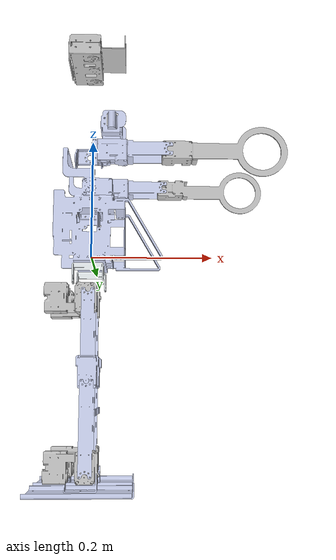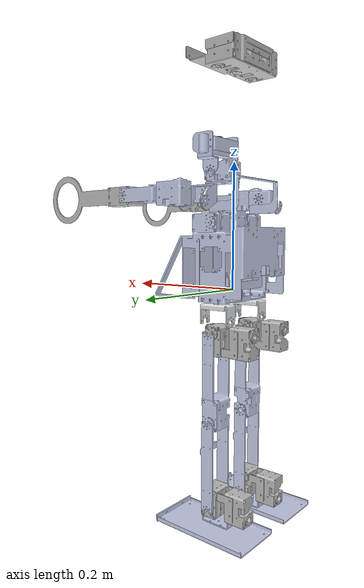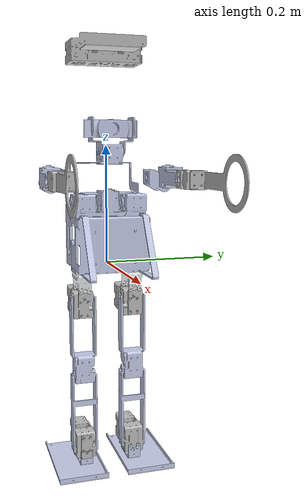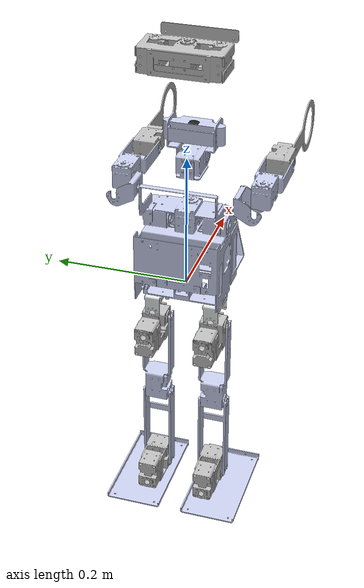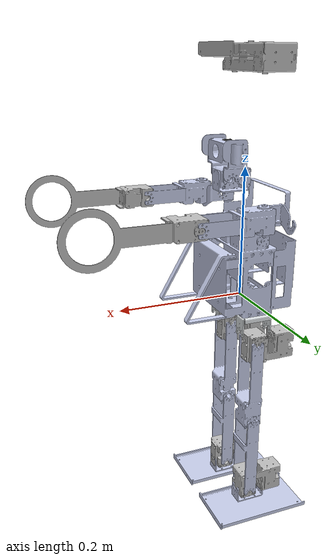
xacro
<?xml version="1.0"?>
<robot
  name="kidsize" xmlns:xacro="http://www.ros.org/wiki/xacro">
	<xacro:property name="pi" value="3.14159265359" />
	<xacro:property name="deg" value="${pi/180}" />
		<material name="black">
			<color rgba="0.1 0.1 0.1 1" />
		</material>
		<material name="white">
			<color rgba="0.8 0.8 0.8 1" />
		</material>
		<material name="clear">
			<color rgba="1.0 1.0 1.0 0.0" />
		</material>
		<material name="orange">
			<color rgba="${255/255} ${108/255} ${10/255} 1.0" />
		</material>
  <link
    name="waist_link">
    <inertial>
      <origin
        xyz="-0.00939428139224641 -4.60441121757915E-08 -0.000641732576416809"
        rpy="0 0 0" />
      <mass
        value="0.210943942888859" />
      <inertia
        ixx="0.000341787200379464"
        ixy="1.68848036086564E-10"
        ixz="1.27321856491004E-06"
        iyy="9.98074093608564E-05"
        iyz="5.24058097864859E-12"
        izz="0.000357999063478674" />
    </inertial>
    <visual>
      <origin
        xyz="0 0 0"
        rpy="0 0 0" />
      <geometry>
        <mesh
          filename="package://urdf/kidsize_model/robocup_robot/meshes/waist_link.STL" />
      </geometry>
      <material
        name="">
        <color
          rgba="0.752941176470588 0.752941176470588 0.752941176470588 1" />
      </material>
    </visual>
    <collision>
      <origin
        xyz="0 0 0"
        rpy="0 0 0" />
      <geometry>
        <mesh
          filename="package://urdf/kidsize_model/robocup_robot/meshes/waist_link.STL" />
      </geometry>
    </collision>
  </link>
  <link
    name="trunk_link">
    <inertial>
      <origin
        xyz="-0.00207929488403977 -0.000148840580601717 0.09882913193458"
        rpy="0 0 0" />
      <mass
        value="0.639632099418805" />
      <inertia
        ixx="0.00207382837512236"
        ixy="7.20391665944275E-07"
        ixz="-0.000145762768834737"
        iyy="0.00159922346192907"
        iyz="2.52085914196649E-06"
        izz="0.00200543365155241" />
    </inertial>
    <visual>
      <origin
        xyz="0 0 0"
        rpy="0 0 0" />
      <geometry>
        <mesh
          filename="package://urdf/kidsize_model/robocup_robot/meshes/trunk_link.STL" />
      </geometry>
      <material
        name="">
        <color
          rgba="0.792156862745098 0.819607843137255 0.933333333333333 1" />
      </material>
    </visual>
    <collision>
      <origin
        xyz="0 0 0"
        rpy="0 0 0" />
      <geometry>
        <mesh
          filename="package://urdf/kidsize_model/robocup_robot/meshes/trunk_link.STL" />
      </geometry>
    </collision>
  </link>
  <joint
    name="waist_yaw_joint"
    type="revolute">
    <origin
      xyz="0 0 0"
      rpy="0 0 0" />
    <parent
      link="waist_link" />
    <child
      link="trunk_link" />
    <axis
      xyz="0 0 1" />
    <limit
      lower="${-pi}"
      upper="${pi}"
      effort="100"
      velocity="5" />
    <dynamics
      friction="0.7"
      damping="0.1" />
  </joint>
  <link
    name="left_shoulder_link">
    <inertial>
      <origin
        xyz="0.00303632774271406 0.0362469594639394 3.31679128606766E-15"
        rpy="0 0 0" />
      <mass
        value="0.0085292893519016" />
      <inertia
        ixx="4.4633278691704E-06"
        ixy="-3.52494995340182E-07"
        ixz="-2.31421700758012E-20"
        iyy="3.60847595287127E-06"
        iyz="1.58823766686137E-21"
        izz="2.76664423653777E-06" />
    </inertial>
    <visual>
      <origin
        xyz="0 0 0"
        rpy="0 0 0" />
      <geometry>
        <mesh
          filename="package://urdf/kidsize_model/robocup_robot/meshes/left_shoulder_link.STL" />
      </geometry>
      <material
        name="">
        <color
          rgba="0.792156862745098 0.819607843137255 0.933333333333333 1" />
      </material>
    </visual>
    <collision>
      <origin
        xyz="0 0 0"
        rpy="0 0 0" />
      <geometry>
        <mesh
          filename="package://urdf/kidsize_model/robocup_robot/meshes/left_shoulder_link.STL" />
      </geometry>
    </collision>
  </link>
  <joint
    name="left_shoulder_pitch_joint"
    type="revolute">
    <origin
      xyz="0 0.053 0.14675"
      rpy="0 0 0" />
    <parent
      link="trunk_link" />
    <child
      link="left_shoulder_link" />
    <axis
      xyz="0 1 0" />
    <limit
      lower="${-pi}"
      upper="${pi}"
      effort="100"
      velocity="5" />
    <dynamics
      friction="0.7"
      damping="0.1" />
  </joint>
  <link
    name="left_upper_arm_link">
    <inertial>
      <origin
        xyz="0.000678411211440105 -1.8987570867858E-07 -0.0191217777296797"
        rpy="0 0 0" />
      <mass
        value="0.0510794115590111" />
      <inertia
        ixx="3.13133402075074E-05"
        ixy="-6.57973359323336E-12"
        ixz="-3.53618283016186E-07"
        iyy="3.06157554760576E-05"
        iyz="2.63047056126239E-10"
        izz="9.80852784205314E-06" />
    </inertial>
    <visual>
      <origin
        xyz="0 0 0"
        rpy="0 0 0" />
      <geometry>
        <mesh
          filename="package://urdf/kidsize_model/robocup_robot/meshes/left_upper_arm_link.STL" />
      </geometry>
      <material
        name="">
        <color
          rgba="0.792156862745098 0.819607843137255 0.933333333333333 1" />
      </material>
    </visual>
    <collision>
      <origin
        xyz="0 0 0"
        rpy="0 0 0" />
      <geometry>
        <mesh
          filename="package://urdf/kidsize_model/robocup_robot/meshes/left_upper_arm_link.STL" />
      </geometry>
    </collision>
  </link>
  <joint
    name="left_upper_arm_roll_joint"
    type="revolute">
    <origin
      xyz="0.02425 0.049 0"
      rpy="0 -1.5708 0" />
    <parent
      link="left_shoulder_link" />
    <child
      link="left_upper_arm_link" />
    <axis
      xyz="-1 0 0" />
    <limit
      lower="${-pi}"
      upper="${pi}"
      effort="100"
      velocity="5" />
    <dynamics
      friction="0.7"
      damping="0.1" />
  </joint>
  <link
    name="left_elbow_link">
    <inertial>
      <origin
        xyz="1.85168757452225E-07 0.00233363841472187 -0.0273900365208956"
        rpy="0 0 0" />
      <mass
        value="0.0523778400197291" />
      <inertia
        ixx="9.27211209059553E-05"
        ixy="2.26333509945507E-11"
        ixz="-3.43238744020251E-10"
        iyy="9.36327197767988E-05"
        iyz="6.86105678251835E-06"
        izz="1.08163961495754E-05" />
    </inertial>
    <visual>
      <origin
        xyz="0 0 0"
        rpy="0 0 0" />
      <geometry>
        <mesh
          filename="package://urdf/kidsize_model/robocup_robot/meshes/left_elbow_link.STL" />
      </geometry>
      <material
        name="">
        <color
          rgba="0.752941176470588 0.752941176470588 0.752941176470588 1" />
      </material>
    </visual>
    <collision>
      <origin
        xyz="0 0 0"
        rpy="0 0 0" />
      <geometry>
        <mesh
          filename="package://urdf/kidsize_model/robocup_robot/meshes/left_elbow_link.STL" />
      </geometry>
    </collision>
  </link>
  <joint
    name="left_elbow_pitch_joint"
    type="revolute">
    <origin
      xyz="0 0 -0.10025"
      rpy="0 0 0" />
    <parent
      link="left_upper_arm_link" />
    <child
      link="left_elbow_link" />
    <axis
      xyz="0 1 0" />
    <limit
      lower="${-pi}"
      upper="${pi}"
      effort="100"
      velocity="5" />
    <dynamics
      friction="0.7"
      damping="0.1" />
  </joint>
  <link
    name="right_shoulder_link">
    <inertial>
      <origin
        xyz="0.00303632774271398 -0.0362469594639394 9.57567358739198E-16"
        rpy="0 0 0" />
      <mass
        value="0.0085292893519016" />
      <inertia
        ixx="4.4633278691704E-06"
        ixy="3.5249499534018E-07"
        ixz="-2.26133899466046E-23"
        iyy="3.60847595287127E-06"
        iyz="3.01602055369598E-21"
        izz="2.76664423653777E-06" />
    </inertial>
    <visual>
      <origin
        xyz="0 0 0"
        rpy="0 0 0" />
      <geometry>
        <mesh
          filename="package://urdf/kidsize_model/robocup_robot/meshes/right_shoulder_link.STL" />
      </geometry>
      <material
        name="">
        <color
          rgba="0.792156862745098 0.819607843137255 0.933333333333333 1" />
      </material>
    </visual>
    <collision>
      <origin
        xyz="0 0 0"
        rpy="0 0 0" />
      <geometry>
        <mesh
          filename="package://urdf/kidsize_model/robocup_robot/meshes/right_shoulder_link.STL" />
      </geometry>
    </collision>
  </link>
  <joint
    name="right_shoulder_pitch_joint"
    type="revolute">
    <origin
      xyz="0 -0.053 0.14675"
      rpy="0 0 0" />
    <parent
      link="trunk_link" />
    <child
      link="right_shoulder_link" />
    <axis
      xyz="0 -1 0" />
    <limit
      lower="${-pi}"
      upper="${pi}"
      effort="100"
      velocity="5" />
    <dynamics
      friction="0.7"
      damping="0.1" />
  </joint>
  <link
    name="right_upper_arm_link">
    <inertial>
      <origin
        xyz="0.000683044937076036 1.08215084787533E-05 -0.0193161303708199"
        rpy="0 0 0" />
      <mass
        value="0.0511158524108051" />
      <inertia
        ixx="3.18475528264542E-05"
        ixy="4.54446779241538E-10"
        ixz="-4.48940731057538E-07"
        iyy="3.11274405794203E-05"
        iyz="3.94345652689599E-08"
        izz="9.81721455090846E-06" />
    </inertial>
    <visual>
      <origin
        xyz="0 0 0"
        rpy="0 0 0" />
      <geometry>
        <mesh
          filename="package://urdf/kidsize_model/robocup_robot/meshes/right_upper_arm_link.STL" />
      </geometry>
      <material
        name="">
        <color
          rgba="0.792156862745098 0.819607843137255 0.933333333333333 1" />
      </material>
    </visual>
    <collision>
      <origin
        xyz="0 0 0"
        rpy="0 0 0" />
      <geometry>
        <mesh
          filename="package://urdf/kidsize_model/robocup_robot/meshes/right_upper_arm_link.STL" />
      </geometry>
    </collision>
  </link>
  <joint
    name="right_upper_arm_roll_joint"
    type="revolute">
    <origin
      xyz="0.02425 -0.049 0"
      rpy="0 -1.5708 0" />
    <parent
      link="right_shoulder_link" />
    <child
      link="right_upper_arm_link" />
    <axis
      xyz="-1 0 0" />
    <limit
      lower="${-pi}"
      upper="${pi}"
      effort="100"
      velocity="5" />
    <dynamics
      friction="0.7"
      damping="0.1" />
  </joint>
  <link
    name="right_elbow_link">
    <inertial>
      <origin
        xyz="-1.85168755703624E-07 -0.00233363841472201 -0.0273900365208949"
        rpy="0 0 0" />
      <mass
        value="0.0523778400197292" />
      <inertia
        ixx="9.27211209059558E-05"
        ixy="2.26333509918962E-11"
        ixz="3.43238744038861E-10"
        iyy="9.36327197767993E-05"
        iyz="-6.86105678251887E-06"
        izz="1.08163961495755E-05" />
    </inertial>
    <visual>
      <origin
        xyz="0 0 0"
        rpy="0 0 0" />
      <geometry>
        <mesh
          filename="package://urdf/kidsize_model/robocup_robot/meshes/right_elbow_link.STL" />
      </geometry>
      <material
        name="">
        <color
          rgba="0.752941176470588 0.752941176470588 0.752941176470588 1" />
      </material>
    </visual>
    <collision>
      <origin
        xyz="0 0 0"
        rpy="0 0 0" />
      <geometry>
        <mesh
          filename="package://urdf/kidsize_model/robocup_robot/meshes/right_elbow_link.STL" />
      </geometry>
    </collision>
  </link>
  <joint
    name="right_elbow_pitch_joint"
    type="revolute">
    <origin
      xyz="0 0 -0.10025"
      rpy="0 0 0" />
    <parent
      link="right_upper_arm_link" />
    <child
      link="right_elbow_link" />
    <axis
      xyz="0 -1 0" />
    <limit
      lower="${-pi}"
      upper="${pi}"
      effort="100"
      velocity="5" />
    <dynamics
      friction="0.7"
      damping="0.1" />
  </joint>
  <link
    name="neck_link">
    <inertial>
      <origin
        xyz="-0.00156041292470768 -0.000723759920217962 0.036704191427895"
        rpy="0 0 0" />
      <mass
        value="0.0478789229788551" />
      <inertia
        ixx="8.27547872890047E-06"
        ixy="1.0025868821589E-07"
        ixz="-1.89903966481202E-08"
        iyy="1.34187871471235E-05"
        iyz="4.49034542147331E-08"
        izz="1.40614214294888E-05" />
    </inertial>
    <visual>
      <origin
        xyz="0 0 0"
        rpy="0 0 0" />
      <geometry>
        <mesh
          filename="package://urdf/kidsize_model/robocup_robot/meshes/neck_link.STL" />
      </geometry>
      <material
        name="">
        <color
          rgba="0.792156862745098 0.819607843137255 0.933333333333333 1" />
      </material>
    </visual>
    <collision>
      <origin
        xyz="0 0 0"
        rpy="0 0 0" />
      <geometry>
        <mesh
          filename="package://urdf/kidsize_model/robocup_robot/meshes/neck_link.STL" />
      </geometry>
    </collision>
  </link>
  <joint
    name="neck_yaw_joint"
    type="revolute">
    <origin
      xyz="0.021 0 0.1495"
      rpy="0 0 0" />
    <parent
      link="trunk_link" />
    <child
      link="neck_link" />
    <axis
      xyz="0 0 1" />
    <limit
      lower="${-pi}"
      upper="${pi}"
      effort="100"
      velocity="5" />
    <dynamics
      friction="0.7"
      damping="0.1" />
  </joint>
  <link
    name="head_link">
    <inertial>
      <origin
        xyz="-0.00241864435015901 -0.000578325032218677 0.0433318848852272"
        rpy="0 0 0" />
      <mass
        value="0.0703068040668923" />
      <inertia
        ixx="5.41933168038282E-05"
        ixy="1.71317904618416E-07"
        ixz="-1.92864248034763E-07"
        iyy="1.71003833917026E-05"
        iyz="2.75406205939894E-07"
        izz="4.97586290771393E-05" />
    </inertial>
    <visual>
      <origin
        xyz="0 0 0"
        rpy="0 0 0" />
      <geometry>
        <mesh
          filename="package://urdf/kidsize_model/robocup_robot/meshes/head_link.STL" />
      </geometry>
      <material
        name="">
        <color
          rgba="0.792156862745098 0.819607843137255 0.933333333333333 1" />
      </material>
    </visual>
    <collision>
      <origin
        xyz="0 0 0"
        rpy="0 0 0" />
      <geometry>
        <mesh
          filename="package://urdf/kidsize_model/robocup_robot/meshes/head_link.STL" />
      </geometry>
    </collision>
  </link>
  <joint
    name="head_pitch_joint"
    type="revolute">
    <origin
      xyz="0.01025 0 0.038"
      rpy="0 0 0" />
    <parent
      link="neck_link" />
    <child
      link="head_link" />
    <axis
      xyz="0 -1 0" />
    <limit
      lower="${-pi}"
      upper="${pi}"
      effort="100"
      velocity="5" />
    <dynamics
      friction="0.7"
      damping="0.1" />
  </joint>
  <link
    name="left_hip_yaw_link">
    <inertial>
      <origin
        xyz="-0.000221415113195594 2.87040434199248E-08 -0.0368621298482312"
        rpy="0 0 0" />
      <mass
        value="0.0234087344413401" />
      <inertia
        ixx="5.73715633041054E-06"
        ixy="-1.67789260387735E-11"
        ixz="2.45933010037554E-08"
        iyy="1.23691993953298E-05"
        iyz="2.78039242789838E-12"
        izz="1.27625110986169E-05" />
    </inertial>
    <visual>
      <origin
        xyz="0 0 0"
        rpy="0 0 0" />
      <geometry>
        <mesh
          filename="package://urdf/kidsize_model/robocup_robot/meshes/left_hip_yaw_link.STL" />
      </geometry>
      <material
        name="">
        <color
          rgba="0.898039215686275 0.917647058823529 0.929411764705882 1" />
      </material>
    </visual>
    <collision>
      <origin
        xyz="0 0 0"
        rpy="0 0 0" />
      <geometry>
        <mesh
          filename="package://urdf/kidsize_model/robocup_robot/meshes/left_hip_yaw_link.STL" />
      </geometry>
    </collision>
  </link>
  <joint
    name="left_hip_yaw_joint"
    type="revolute">
    <origin
      xyz="0 0.0445 0"
      rpy="0 0 0" />
    <parent
      link="waist_link" />
    <child
      link="left_hip_yaw_link" />
    <axis
      xyz="0 0 -1" />
    <limit
      lower="${-pi}"
      upper="${pi}"
      effort="100"
      velocity="5" />
    <dynamics
      friction="0.7"
      damping="0.1" />
  </joint>
  <link
    name="left_hip_roll_link">
    <inertial>
      <origin
        xyz="0.0264560202844392 2.81419267119248E-05 -0.0154218154218739"
        rpy="0 0 0" />
      <mass
        value="0.185577684373585" />
      <inertia
        ixx="7.62644456712743E-05"
        ixy="-3.53079974453397E-07"
        ixz="7.00492601513815E-07"
        iyy="0.000197383117610255"
        iyz="-1.0680995440682E-07"
        izz="0.000170036099220205" />
    </inertial>
    <visual>
      <origin
        xyz="0 0 0"
        rpy="0 0 0" />
      <geometry>
        <mesh
          filename="package://urdf/kidsize_model/robocup_robot/meshes/left_hip_roll_link.STL" />
      </geometry>
      <material
        name="">
        <color
          rgba="0.752941176470588 0.752941176470588 0.752941176470588 1" />
      </material>
    </visual>
    <collision>
      <origin
        xyz="0 0 0"
        rpy="0 0 0" />
      <geometry>
        <mesh
          filename="package://urdf/kidsize_model/robocup_robot/meshes/left_hip_roll_link.STL" />
      </geometry>
    </collision>
  </link>
  <joint
    name="left_hip_roll_joint"
    type="revolute">
    <origin
      xyz="-0.05075 0 -0.06188"
      rpy="0 0 0" />
    <parent
      link="left_hip_yaw_link" />
    <child
      link="left_hip_roll_link" />
    <axis
      xyz="1 0 0" />
    <limit
      lower="${-pi}"
      upper="${pi}"
      effort="100"
      velocity="5" />
    <dynamics
      friction="0.7"
      damping="0.1" />
  </joint>
  <link
    name="left_thigh_link">
    <inertial>
      <origin
        xyz="-3.42495945978571E-05 7.44140456582637E-05 -0.11135617060622"
        rpy="0 0 0" />
      <mass
        value="0.130028257484268" />
      <inertia
        ixx="0.000172229742728479"
        ixy="-4.64832232230545E-08"
        ixz="-4.83056099668598E-08"
        iyy="0.00015589230608976"
        iyz="2.25328823392377E-07"
        izz="4.77117079869364E-05" />
    </inertial>
    <visual>
      <origin
        xyz="0 0 0"
        rpy="0 0 0" />
      <geometry>
        <mesh
          filename="package://urdf/kidsize_model/robocup_robot/meshes/left_thigh_link.STL" />
      </geometry>
      <material
        name="">
        <color
          rgba="0.792156862745098 0.819607843137255 0.933333333333333 1" />
      </material>
    </visual>
    <collision>
      <origin
        xyz="0 0 0"
        rpy="0 0 0" />
      <geometry>
        <mesh
          filename="package://urdf/kidsize_model/robocup_robot/meshes/left_thigh_link.STL" />
      </geometry>
    </collision>
  </link>
  <joint
    name="left_hip_pitch_joint"
    type="revolute">
    <origin
      xyz="0.05077 0 -0.00012"
      rpy="0 0 0" />
    <parent
      link="left_hip_roll_link" />
    <child
      link="left_thigh_link" />
    <axis
      xyz="0 1 0" />
    <limit
      lower="${-pi}"
      upper="${pi}"
      effort="100"
      velocity="5" />
    <dynamics
      friction="0.7"
      damping="0.1" />
  </joint>
  <link
    name="left_shank_link">
    <inertial>
      <origin
        xyz="0.00211942700396936 5.55111512312578E-17 -0.0648672619911793"
        rpy="0 0 0" />
      <mass
        value="0.0297851126602444" />
      <inertia
        ixx="6.16541128313655E-05"
        ixy="2.80070279311884E-20"
        ixz="-1.60136858658058E-06"
        iyy="4.64036585684406E-05"
        iyz="-4.07461690752412E-22"
        izz="2.02829249667487E-05" />
    </inertial>
    <visual>
      <origin
        xyz="0 0 0"
        rpy="0 0 0" />
      <geometry>
        <mesh
          filename="package://urdf/kidsize_model/robocup_robot/meshes/left_shank_link.STL" />
      </geometry>
      <material
        name="">
        <color
          rgba="0.792156862745098 0.819607843137255 0.933333333333333 1" />
      </material>
    </visual>
    <collision>
      <origin
        xyz="0 0 0"
        rpy="0 0 0" />
      <geometry>
        <mesh
          filename="package://urdf/kidsize_model/robocup_robot/meshes/left_shank_link.STL" />
      </geometry>
    </collision>
  </link>
  <joint
    name="left_knee_pitch_joint"
    type="revolute">
    <origin
      xyz="0 0 -0.14"
      rpy="0 0 0" />
    <parent
      link="left_thigh_link" />
    <child
      link="left_shank_link" />
    <axis
      xyz="0 1 0" />
    <limit
      lower="${-pi}"
      upper="${pi}"
      effort="100"
      velocity="5" />
    <dynamics
      friction="0.7"
      damping="0.1" />
  </joint>
  <link
    name="left_ankle_link">
    <inertial>
      <origin
        xyz="-0.0243619748730696 7.61370842207038E-05 0.0153018154218736"
        rpy="0 0 0" />
      <mass
        value="0.185577684373585" />
      <inertia
        ixx="7.62635168758286E-05"
        ixy="-1.18118833820851E-07"
        ixz="-6.78268768336747E-07"
        iyy="0.000196949569147409"
        iyz="8.56549408551342E-08"
        izz="0.000169601621961913" />
    </inertial>
    <visual>
      <origin
        xyz="0 0 0"
        rpy="0 0 0" />
      <geometry>
        <mesh
          filename="package://urdf/kidsize_model/robocup_robot/meshes/left_ankle_link.STL" />
      </geometry>
      <material
        name="">
        <color
          rgba="0.752941176470588 0.752941176470588 0.752941176470588 1" />
      </material>
    </visual>
    <collision>
      <origin
        xyz="0 0 0"
        rpy="0 0 0" />
      <geometry>
        <mesh
          filename="package://urdf/kidsize_model/robocup_robot/meshes/left_ankle_link.STL" />
      </geometry>
    </collision>
  </link>
  <joint
    name="left_ankle_pitch_joint"
    type="revolute">
    <origin
      xyz="0 0 -0.14"
      rpy="0 0 0" />
    <parent
      link="left_shank_link" />
    <child
      link="left_ankle_link" />
    <axis
      xyz="0 1 0" />
    <limit
      lower="${-pi}"
      upper="${pi}"
      effort="100"
      velocity="5" />
    <dynamics
      friction="0.7"
      damping="0.1" />
  </joint>
  <link
    name="left_foot_link">
    <inertial>
      <origin
        xyz="0.0540374180370118 0.00742076380487194 -0.0325457026283867"
        rpy="0 0 0" />
      <mass
        value="0.0465401343494676" />
      <inertia
        ixx="4.13338457284459E-05"
        ixy="-1.51051005199587E-07"
        ixz="-6.21176879901946E-07"
        iyy="0.000113524055426782"
        iyz="4.7953588542836E-07"
        izz="0.000151411754822504" />
    </inertial>
    <visual>
      <origin
        xyz="0 0 0"
        rpy="0 0 0" />
      <geometry>
        <mesh
          filename="package://urdf/kidsize_model/robocup_robot/meshes/left_foot_link.STL" />
      </geometry>
      <material
        name="">
        <color
          rgba="0.792156862745098 0.819607843137255 0.933333333333333 1" />
      </material>
    </visual>
    <collision>
      <origin
        xyz="0 0 0"
        rpy="0 0 0" />
      <geometry>
        <mesh
          filename="package://urdf/kidsize_model/robocup_robot/meshes/left_foot_link.STL" />
      </geometry>
    </collision>
  </link>
  <joint
    name="left_ankle_roll_joint"
    type="revolute">
    <origin
      xyz="-0.05077 0 -0.00012"
      rpy="0 0 0" />
    <parent
      link="left_ankle_link" />
    <child
      link="left_foot_link" />
    <axis
      xyz="1 0 0" />
    <limit
      lower="${-pi}"
      upper="${pi}"
      effort="100"
      velocity="5" />
    <dynamics
      friction="0.7"
      damping="0.1" />
  </joint>
  <link
    name="right_hip_yaw_link">
    <inertial>
      <origin
        xyz="-0.00022141511319651 2.87040437529917E-08 -0.0368621298482309"
        rpy="0 0 0" />
      <mass
        value="0.0234087344413401" />
      <inertia
        ixx="5.73715633041056E-06"
        ixy="-1.67789260333574E-11"
        ixz="2.45933010038126E-08"
        iyy="1.23691993953298E-05"
        iyz="2.78039242796716E-12"
        izz="1.27625110986169E-05" />
    </inertial>
    <visual>
      <origin
        xyz="0 0 0"
        rpy="0 0 0" />
      <geometry>
        <mesh
          filename="package://urdf/kidsize_model/robocup_robot/meshes/right_hip_yaw_link.STL" />
      </geometry>
      <material
        name="">
        <color
          rgba="0.898039215686275 0.917647058823529 0.929411764705882 1" />
      </material>
    </visual>
    <collision>
      <origin
        xyz="0 0 0"
        rpy="0 0 0" />
      <geometry>
        <mesh
          filename="package://urdf/kidsize_model/robocup_robot/meshes/right_hip_yaw_link.STL" />
      </geometry>
    </collision>
  </link>
  <joint
    name="right_hip_yaw_joint"
    type="revolute">
    <origin
      xyz="0 -0.0445 0"
      rpy="0 0 0" />
    <parent
      link="waist_link" />
    <child
      link="right_hip_yaw_link" />
    <axis
      xyz="0 0 -1" />
    <limit
      lower="${-pi}"
      upper="${pi}"
      effort="100"
      velocity="5" />
    <dynamics
      friction="0.7"
      damping="0.1" />
  </joint>
  <link
    name="right_hip_roll_link">
    <inertial>
      <origin
        xyz="0.0264080251268298 -7.61370843215536E-05 -0.0154218154218739"
        rpy="0 0 0" />
      <mass
        value="0.185577684373585" />
      <inertia
        ixx="7.62635168758286E-05"
        ixy="1.18118833820891E-07"
        ixz="6.78268768336934E-07"
        iyy="0.00019694956914741"
        iyz="8.56549408551455E-08"
        izz="0.000169601621961913" />
    </inertial>
    <visual>
      <origin
        xyz="0 0 0"
        rpy="0 0 0" />
      <geometry>
        <mesh
          filename="package://urdf/kidsize_model/robocup_robot/meshes/right_hip_roll_link.STL" />
      </geometry>
      <material
        name="">
        <color
          rgba="0.752941176470588 0.752941176470588 0.752941176470588 1" />
      </material>
    </visual>
    <collision>
      <origin
        xyz="0 0 0"
        rpy="0 0 0" />
      <geometry>
        <mesh
          filename="package://urdf/kidsize_model/robocup_robot/meshes/right_hip_roll_link.STL" />
      </geometry>
    </collision>
  </link>
  <joint
    name="right_hip_roll_joint"
    type="revolute">
    <origin
      xyz="-0.05075 0 -0.06188"
      rpy="0 0 0" />
    <parent
      link="right_hip_yaw_link" />
    <child
      link="right_hip_roll_link" />
    <axis
      xyz="1 0 0" />
    <limit
      lower="${-pi}"
      upper="${pi}"
      effort="100"
      velocity="5" />
    <dynamics
      friction="0.7"
      damping="0.1" />
  </joint>
  <link
    name="right_thigh_link">
    <inertial>
      <origin
        xyz="3.42495945982457E-05 -7.44140456583609E-05 -0.111356170606221"
        rpy="0 0 0" />
      <mass
        value="0.130028257484268" />
      <inertia
        ixx="0.000172229742728479"
        ixy="-4.64832232230481E-08"
        ixz="4.83056099672987E-08"
        iyy="0.00015589230608976"
        iyz="-2.25328823392431E-07"
        izz="4.77117079869365E-05" />
    </inertial>
    <visual>
      <origin
        xyz="0 0 0"
        rpy="0 0 0" />
      <geometry>
        <mesh
          filename="package://urdf/kidsize_model/robocup_robot/meshes/right_thigh_link.STL" />
      </geometry>
      <material
        name="">
        <color
          rgba="0.792156862745098 0.819607843137255 0.933333333333333 1" />
      </material>
    </visual>
    <collision>
      <origin
        xyz="0 0 0"
        rpy="0 0 0" />
      <geometry>
        <mesh
          filename="package://urdf/kidsize_model/robocup_robot/meshes/right_thigh_link.STL" />
      </geometry>
    </collision>
  </link>
  <joint
    name="right_hip_pitch_joint"
    type="revolute">
    <origin
      xyz="0.05077 0 -0.00012"
      rpy="0 0 0" />
    <parent
      link="right_hip_roll_link" />
    <child
      link="right_thigh_link" />
    <axis
      xyz="0 -1 0" />
    <limit
      lower="${-pi}"
      upper="${pi}"
      effort="100"
      velocity="5" />
    <dynamics
      friction="0.7"
      damping="0.1" />
  </joint>
  <link
    name="right_shank_link">
    <inertial>
      <origin
        xyz="0.00211942700396961 0 -0.0648672619911792"
        rpy="0 0 0" />
      <mass
        value="0.0297851126602444" />
      <inertia
        ixx="6.16541128313656E-05"
        ixy="-1.72022202107548E-19"
        ixz="-1.60136858658041E-06"
        iyy="4.64036585684406E-05"
        iyz="-7.51769465648825E-20"
        izz="2.02829249667487E-05" />
    </inertial>
    <visual>
      <origin
        xyz="0 0 0"
        rpy="0 0 0" />
      <geometry>
        <mesh
          filename="package://urdf/kidsize_model/robocup_robot/meshes/right_shank_link.STL" />
      </geometry>
      <material
        name="">
        <color
          rgba="0.792156862745098 0.819607843137255 0.933333333333333 1" />
      </material>
    </visual>
    <collision>
      <origin
        xyz="0 0 0"
        rpy="0 0 0" />
      <geometry>
        <mesh
          filename="package://urdf/kidsize_model/robocup_robot/meshes/right_shank_link.STL" />
      </geometry>
    </collision>
  </link>
  <joint
    name="right_knee_pitch_joint"
    type="revolute">
    <origin
      xyz="0 0 -0.14"
      rpy="0 0 0" />
    <parent
      link="right_thigh_link" />
    <child
      link="right_shank_link" />
    <axis
      xyz="0 -1 0" />
    <limit
      lower="${-pi}"
      upper="${pi}"
      effort="100"
      velocity="5" />
    <dynamics
      friction="0.7"
      damping="0.1" />
  </joint>
  <link
    name="right_ankle_link">
    <inertial>
      <origin
        xyz="-0.02431397971546 -2.81419266111582E-05 0.0153018154218738"
        rpy="0 0 0" />
      <mass
        value="0.185577684373585" />
      <inertia
        ixx="7.62644456712743E-05"
        ixy="3.53079974453512E-07"
        ixz="-7.00492601513789E-07"
        iyy="0.000197383117610254"
        iyz="-1.06809954406831E-07"
        izz="0.000170036099220203" />
    </inertial>
    <visual>
      <origin
        xyz="0 0 0"
        rpy="0 0 0" />
      <geometry>
        <mesh
          filename="package://urdf/kidsize_model/robocup_robot/meshes/right_ankle_link.STL" />
      </geometry>
      <material
        name="">
        <color
          rgba="0.752941176470588 0.752941176470588 0.752941176470588 1" />
      </material>
    </visual>
    <collision>
      <origin
        xyz="0 0 0"
        rpy="0 0 0" />
      <geometry>
        <mesh
          filename="package://urdf/kidsize_model/robocup_robot/meshes/right_ankle_link.STL" />
      </geometry>
    </collision>
  </link>
  <joint
    name="right_ankle_pitch_joint"
    type="revolute">
    <origin
      xyz="0 0 -0.14"
      rpy="0 0 0" />
    <parent
      link="right_shank_link" />
    <child
      link="right_ankle_link" />
    <axis
      xyz="0 -1 0" />
    <limit
      lower="${-pi}"
      upper="${pi}"
      effort="100"
      velocity="5" />
    <dynamics
      friction="0.7"
      damping="0.1" />
  </joint>
  <link
    name="right_foot_link">
    <inertial>
      <origin
        xyz="0.054037418037219 -0.00742106828958713 -0.0325457026283424"
        rpy="0 0 0" />
      <mass
        value="0.0465401343494674" />
      <inertia
        ixx="4.13336941039743E-05"
        ixy="1.51414343960291E-07"
        ixz="-6.21176879970176E-07"
        iyy="0.000113524055426785"
        iyz="-4.79319927951698E-07"
        izz="0.000151411603198034" />
    </inertial>
    <visual>
      <origin
        xyz="0 0 0"
        rpy="0 0 0" />
      <geometry>
        <mesh
          filename="package://urdf/kidsize_model/robocup_robot/meshes/right_foot_link.STL" />
      </geometry>
      <material
        name="">
        <color
          rgba="0.792156862745098 0.819607843137255 0.933333333333333 1" />
      </material>
    </visual>
    <collision>
      <origin
        xyz="0 0 0"
        rpy="0 0 0" />
      <geometry>
        <mesh
          filename="package://urdf/kidsize_model/robocup_robot/meshes/right_foot_link.STL" />
      </geometry>
    </collision>
  </link>
  <joint
    name="right_ankle_roll_joint"
    type="revolute">
    <origin
      xyz="-0.05077 0 -0.00012"
      rpy="0 0 0" />
    <parent
      link="right_ankle_link" />
    <child
      link="right_foot_link" />
    <axis
      xyz="1 0 0" />
    <limit
      lower="${-pi}"
      upper="${pi}"
      effort="100"
      velocity="5" />
    <dynamics
      friction="0.7"
      damping="0.1" />
  </joint>
  <joint name="camera_joint" type="fixed">
    <axis xyz="0 1 0" />
    <origin xyz="0.0 0.0 0.04" rpy="0 0 0"/>
    <parent link="head_link"/>
    <child link="camera_link"/>
  </joint>

  <!-- Camera -->
  <link name="camera_link">
    <collision>
      <origin xyz="-0.0 0 0" rpy="0 1.5708 0"/>
      <geometry>
    <cylinder radius="0.0145" length="0.01"/>
      </geometry>
    </collision>

    <visual>
      <origin xyz="-0.0 0 0" rpy="0 1.5708 0"/>
      <geometry>
    <cylinder radius="0.0145" length="0.01"/>
      </geometry>
    </visual>

    <inertial>
      <mass value="1e-5" />
      <origin xyz="0 0 0" rpy="0 0 0"/>
      <inertia ixx="1e-6" ixy="0" ixz="0" iyy="1e-6" iyz="0" izz="1e-6" />
    </inertial>
  </link>

		<transmission name="right_hip_yaw_transmission">
			<type>transmission_interface/SimpleTransmission</type>
			<joint name="right_hip_yaw_joint" >
                <hardwareInterface>hardware_interface/EffortJointInterface</hardwareInterface>

   </joint>
			<actuator name="right_hip_yaw_joint">
				<mechanicalReduction>1</mechanicalReduction>
			</actuator>
		</transmission>
		<transmission name="right_hip_roll_transmission">
			<type>transmission_interface/SimpleTransmission</type>
            <joint name="right_hip_roll_joint" >
				<hardwareInterface>hardware_interface/EffortJointInterface</hardwareInterface>

   </joint>
			<actuator name="right_hip_roll_joint">
				<mechanicalReduction>1</mechanicalReduction>
			</actuator>
		</transmission>
		<transmission name="right_hip_pitch_transmission">
			<type>transmission_interface/SimpleTransmission</type>
            <joint name="right_hip_pitch_joint" >
				<hardwareInterface>hardware_interface/EffortJointInterface</hardwareInterface>

   </joint>
			<actuator name="right_hip_pitch_joint">
				<mechanicalReduction>1</mechanicalReduction>
			</actuator>
		</transmission>
		<transmission name="right_knee_pitch_transmission">
			<type>transmission_interface/SimpleTransmission</type>
            <joint name="right_knee_pitch_joint" >
				<hardwareInterface>hardware_interface/EffortJointInterface</hardwareInterface>

   </joint>
			<actuator name="right_knee_pitch_joint">
				<mechanicalReduction>1</mechanicalReduction>
			</actuator>
		</transmission>
		<transmission name="right_ankle_pitch_transmission">
			<type>transmission_interface/SimpleTransmission</type>
            <joint name="right_ankle_pitch_joint" >
				<hardwareInterface>hardware_interface/EffortJointInterface</hardwareInterface>

   </joint>
			<actuator name="right_ankle_pitch_joint">
				<mechanicalReduction>1</mechanicalReduction>
			</actuator>
		</transmission>
		<transmission name="right_ankle_roll_transmission">
			<type>transmission_interface/SimpleTransmission</type>
            <joint name="right_ankle_roll_joint" >
                <hardwareInterface>hardware_interface/EffortJointInterface</hardwareInterface>

   </joint>
			<actuator name="right_ankle_roll_joint">
				<mechanicalReduction>1</mechanicalReduction>
			</actuator>
		</transmission>
		<transmission name="left_hip_yaw_transmission">
			<type>transmission_interface/SimpleTransmission</type>
            <joint name="left_hip_yaw_joint" >
				<hardwareInterface>hardware_interface/EffortJointInterface</hardwareInterface>

   </joint>
			<actuator name="left_hip_yaw_joint">
				<mechanicalReduction>1</mechanicalReduction>
			</actuator>
		</transmission>
		<transmission name="left_hip_roll_transmission">
			<type>transmission_interface/SimpleTransmission</type>
            <joint name="left_hip_roll_joint" >
				<hardwareInterface>hardware_interface/EffortJointInterface</hardwareInterface>

   </joint>
			<actuator name="left_hip_roll_joint">
				<mechanicalReduction>1</mechanicalReduction>
			</actuator>
		</transmission>
		<transmission name="left_hip_pitch_transmission">
			<type>transmission_interface/SimpleTransmission</type>
            <joint name="left_hip_pitch_joint" >
				<hardwareInterface>hardware_interface/EffortJointInterface</hardwareInterface>

   </joint>
			<actuator name="left_hip_pitch_joint">
				<mechanicalReduction>1</mechanicalReduction>
			</actuator>
		</transmission>
		<transmission name="left_knee_pitch_transmission">
			<type>transmission_interface/SimpleTransmission</type>
            <joint name="left_knee_pitch_joint" >
				<hardwareInterface>hardware_interface/EffortJointInterface</hardwareInterface>

   </joint>
			<actuator name="left_knee_pitch_joint">
				<mechanicalReduction>1</mechanicalReduction>
			</actuator>
		</transmission>
		<transmission name="left_ankle_pitch_transmission">
			<type>transmission_interface/SimpleTransmission</type>
            <joint name="left_ankle_pitch_joint" >
				<hardwareInterface>hardware_interface/EffortJointInterface</hardwareInterface>

   </joint>
			<actuator name="left_ankle_pitch_joint">
				<mechanicalReduction>1</mechanicalReduction>
			</actuator>
		</transmission>
		<transmission name="left_ankle_roll_transmission">
			<type>transmission_interface/SimpleTransmission</type>
            <joint name="left_ankle_roll_joint" >
				<hardwareInterface>hardware_interface/EffortJointInterface</hardwareInterface>

   </joint>
			<actuator name="left_ankle_roll_joint">
				<mechanicalReduction>1</mechanicalReduction>
			</actuator>
      </transmission>
		<transmission name="right_shoulder_pitch_transmission">
			<type>transmission_interface/SimpleTransmission</type>
            <joint name="right_shoulder_pitch_joint" >
				<hardwareInterface>hardware_interface/EffortJointInterface</hardwareInterface>

   </joint>
			<actuator name="right_shoulder_pitch_joint">
				<mechanicalReduction>1</mechanicalReduction>
			</actuator>
		</transmission>
		<transmission name="right_shoulder_roll_transmission">
			<type>transmission_interface/SimpleTransmission</type>
            <joint name="right_upper_arm_roll_joint" >
				<hardwareInterface>hardware_interface/EffortJointInterface</hardwareInterface>

   </joint>
			<actuator name="right_upper_arm_roll_joint">
				<mechanicalReduction>1</mechanicalReduction>
			</actuator>
		</transmission>
		<transmission name="right_elbow_pitch_transmission">
			<type>transmission_interface/SimpleTransmission</type>
            <joint name="right_elbow_pitch_joint" >
				<hardwareInterface>hardware_interface/EffortJointInterface</hardwareInterface>

   </joint>
			<actuator name="right_elbow_pitch_joint">
				<mechanicalReduction>1</mechanicalReduction>
			</actuator>
		</transmission>
		<transmission name="left_shoulder_pitch_transmission">
			<type>transmission_interface/SimpleTransmission</type>
            <joint name="left_shoulder_pitch_joint" >
				<hardwareInterface>hardware_interface/EffortJointInterface</hardwareInterface>

   </joint>
			<actuator name="left_shoulder_pitch_joint">
				<mechanicalReduction>1</mechanicalReduction>
			</actuator>
		</transmission>
		<transmission name="left_shoulder_roll_transmission">
			<type>transmission_interface/SimpleTransmission</type>
            <joint name="left_upper_arm_roll_joint" >
				<hardwareInterface>hardware_interface/EffortJointInterface</hardwareInterface>

   </joint>
			<actuator name="left_upper_arm_roll_joint">
				<mechanicalReduction>1</mechanicalReduction>
			</actuator>
		</transmission>
		<transmission name="left_elbow_pitch_transmission">
			<type>transmission_interface/SimpleTransmission</type>
            <joint name="left_elbow_pitch_joint" >
				<hardwareInterface>hardware_interface/EffortJointInterface</hardwareInterface>

   </joint>
			<actuator name="left_elbow_pitch_joint">
				<mechanicalReduction>1</mechanicalReduction>
			</actuator>
		</transmission>
		<transmission name="neck_yaw_transmission">
			<type>transmission_interface/SimpleTransmission</type>
            <joint name="neck_yaw_joint" >
				<hardwareInterface>hardware_interface/EffortJointInterface</hardwareInterface>

   </joint>
			<actuator name="neck_yaw_joint">
				<mechanicalReduction>1</mechanicalReduction>
			</actuator>
		</transmission>
		<transmission name="head_pitch_transmission">
			<type>transmission_interface/SimpleTransmission</type>
            <joint name="head_pitch_joint" >
				<hardwareInterface>hardware_interface/EffortJointInterface</hardwareInterface>

   </joint>
			<actuator name="head_pitch_joint">
				<mechanicalReduction>1</mechanicalReduction>
			</actuator>
		</transmission>

                <transmission name="waist_yaw_transmission">
			<type>transmission_interface/SimpleTransmission</type>
            <joint name="waist_yaw_joint" >
				<hardwareInterface>hardware_interface/EffortJointInterface</hardwareInterface>

   </joint>
			<actuator name="waist_yaw_joint">
				<mechanicalReduction>1</mechanicalReduction>
			</actuator>
		</transmission>

		<!-- Gazebo configuration -->

		<gazebo>
			<plugin name="gazebo_ros_control" filename="libgazebo_ros_control.so">
				<robotNamespace>/robot1</robotNamespace>
				<legacyModeNS>true</legacyModeNS>
			</plugin>
		</gazebo>

<gazebo reference="camera_link">
<material>Gazebo/Black</material>
    <sensor type="camera" name="camera1">
      <visualize>1</visualize>
      <update_rate>30.0</update_rate>
      <camera name="head">
        <horizontal_fov>1.3962634</horizontal_fov>
        <image>
          <width>800</width>
          <height>600</height>
          <format>R8G8B8</format>
        </image>
        <clip>
          <near>0.2</near>
          <far>1000</far>
        </clip>
        <noise>
          <type>gaussian</type>
          <!-- Noise is sampled independently per pixel on each frame.
               That pixel's noise value is added to each of its color
               channels, which at that point lie in the range [0,1]. -->
          <mean>0.0</mean>
          <stddev>0.007</stddev>
        </noise>
      </camera>
      <plugin name="camera_controller" filename="libgazebo_ros_camera.so">
	<robotNamespace>/robot1</robotNamespace>
        <alwaysOn>true</alwaysOn>
        <updateRate>0.0</updateRate>
        <cameraName>/camera</cameraName>
        <imageTopicName>image_raw</imageTopicName>
        <cameraInfoTopicName>camera_info</cameraInfoTopicName>
        <frameName>camera_link</frameName>
        <hackBaseline>0.07</hackBaseline>
        <distortionK1>0.0</distortionK1>
        <distortionK2>0.0</distortionK2>
        <distortionK3>0.0</distortionK3>
        <distortionT1>0.0</distortionT1>
        <distortionT2>0.0</distortionT2>
      </plugin>
    </sensor>
</gazebo>

		<!-- Gazebo links -->
		<gazebo reference="trunk_link">
			<material>Gazebo/White</material>
		</gazebo>
                <gazebo reference="waist_link">
			<material>Gazebo/White</material>
		</gazebo>
		<gazebo reference="left_hip_yaw_link">
			<material>Gazebo/White</material>
		</gazebo>
		<gazebo reference="left_hip_roll_link">
			<material>Gazebo/Black</material>
		</gazebo>
		<gazebo reference="left_thigh_link">
			<material>Gazebo/White</material>
		</gazebo>
		<gazebo reference="left_shank_link">
			<material>Gazebo/White</material>
		</gazebo>
		<gazebo reference="left_ankle_link">
			<material>Gazebo/Black</material>
		</gazebo>
		<gazebo reference="left_foot_link">
			<material>Gazebo/FlatBlack</material>
			<kp>1000000.0</kp>
			<kd>100.0</kd>
			<mu1>10000.0</mu1>
			<mu2>10000.0</mu2>
			<fdir1>1 0 0</fdir1>
			<maxVel>1.0</maxVel>
			<minDepth>0.00</minDepth>
		</gazebo>
		<gazebo reference="left_shoulder_link">
			<material>Gazebo/White</material>
		</gazebo>
		<gazebo reference="left_upper_arm_link">
			<material>Gazebo/White</material>
		</gazebo>
		<gazebo reference="left_elbow_link">
			<material>Gazebo/White</material>
		</gazebo>
		<gazebo reference="right_hip_yaw_link">
			<material>Gazebo/White</material>
		</gazebo>
		<gazebo reference="right_hip_roll_link">
			<material>Gazebo/Black</material>
		</gazebo>
		<gazebo reference="right_thigh_link">
			<material>Gazebo/White</material>
		</gazebo>
		<gazebo reference="right_shank_link">
			<material>Gazebo/White</material>
		</gazebo>
		<gazebo reference="right_ankle_link">
			<material>Gazebo/Black</material>
		</gazebo>
		<gazebo reference="right_foot_link">
			<material>Gazebo/FlatBlack</material>
			<kp>1000000.0</kp>
			<kd>100.0</kd>
			<mu1>1000000.0</mu1>
			<mu2>1000000.0</mu2>
			<fdir1>1 0 0</fdir1>
			<maxVel>1.0</maxVel>
			<minDepth>0.00</minDepth>
		</gazebo>
		<gazebo reference="right_shoulder_link">
			<material>Gazebo/White</material>
		</gazebo>
		<gazebo reference="right_upper_arm_link">
			<material>Gazebo/White</material>
		</gazebo>
		<gazebo reference="right_elbow_link">
			<material>Gazebo/White</material>
		</gazebo>
		<gazebo reference="neck_link">
			<material>Gazebo/Black</material>
		</gazebo>
  <gazebo reference="trunk_link">
    <gravity>true</gravity>
    <sensor name="imu_sensor" type="imu">
      <always_on>true</always_on>
      <update_rate>100</update_rate>
      <visualize>true</visualize>
      <topic>__default_topic__</topic>
      <plugin filename="libgazebo_ros_imu_sensor.so" name="imu_plugin">
        <topicName>imu</topicName>
        <bodyName>trunk_link</bodyName>
        <updateRateHZ>60.0</updateRateHZ>
        <gaussianNoise>0.0</gaussianNoise>
        <xyzOffset>0 0 0</xyzOffset>
        <rpyOffset>0 0 0</rpyOffset>
        <frameName>imu_link</frameName>
      </plugin>
      <pose>0 0 0 0 0 0</pose>
    </sensor>
  </gazebo>
</robot>
